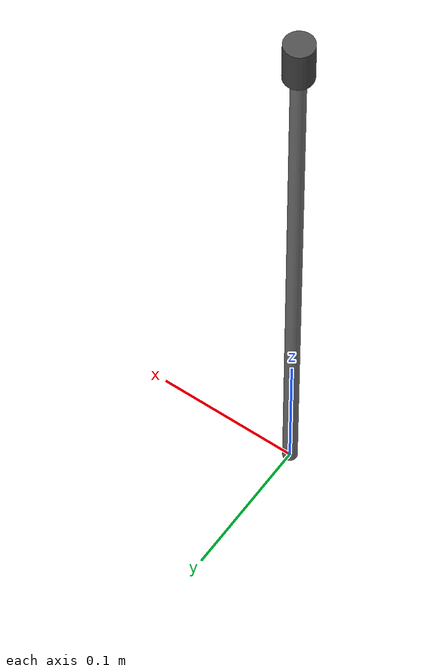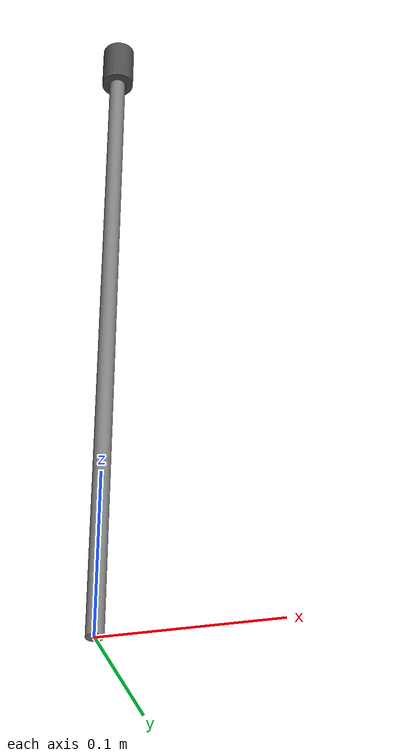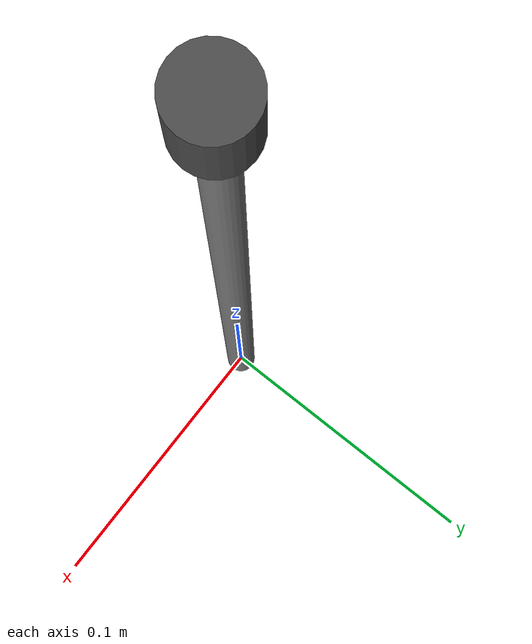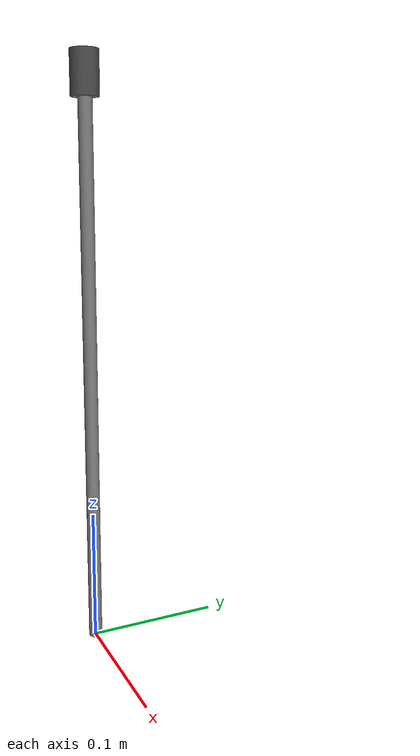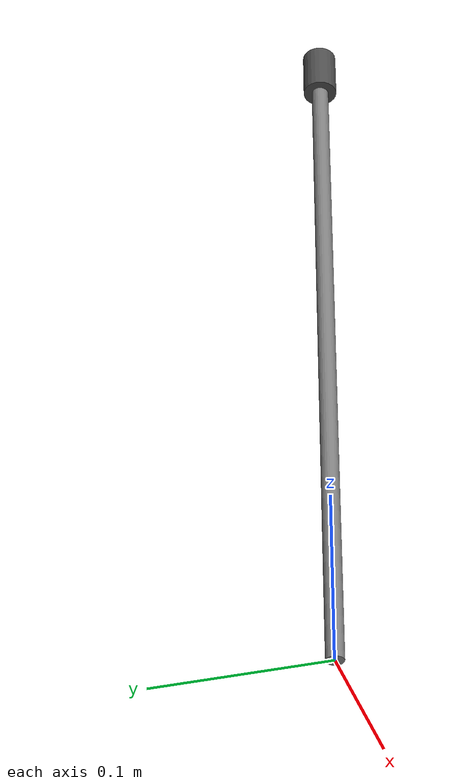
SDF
<?xml version="1.0" ?>
<sdf version="1.7">
  <model name="stick">
    <static>false</static>

    <!-- Main stick shaft -->
    <link name="stick_link">
      <pose>0 0 0 0 0 0</pose>
      <inertial>
        <mass>0.04</mass>
        <inertia>
          <ixx>0.0002</ixx>
          <iyy>0.0002</iyy>
          <izz>0.0000005</izz>
        </inertia>
      </inertial>

      <visual name="main_stick_visual">
        <geometry>
          <cylinder>
            <radius>0.005</radius>
            <length>0.4</length>
          </cylinder>
        </geometry>
        <pose>0 0 0.2 0 0 0</pose>
        <material>
          <ambient>0.5 0.5 0.5 1</ambient>
          <diffuse>0.5 0.5 0.5 1</diffuse>
        </material>
      </visual>

      <collision name="main_stick_collision">
        <geometry>
          <cylinder>
            <radius>0.005</radius>
            <length>0.4</length>
          </cylinder>
        </geometry>
        <pose>0 0 0.2 0 0 0</pose>
      </collision>
    </link>

    <!-- Cap at the tip -->
    <link name="sensor_cap_link">
      <pose>0 0 0.415 0 0 0</pose>
      <inertial>
        <mass>0.01</mass>
        <inertia>
          <ixx>0.00001</ixx>
          <iyy>0.00001</iyy>
          <izz>0.0000001</izz>
        </inertia>
      </inertial>

      <visual name="sensor_cap_visual">
        <geometry>
          <cylinder>
            <radius>0.01</radius>
            <length>0.03</length>
          </cylinder>
        </geometry>
        <pose>0 0 0 0 0 0</pose>
        <material>
          <ambient>0.3 0.3 0.3 1</ambient>
          <diffuse>0.3 0.3 0.3 1</diffuse>
        </material>
      </visual>

      <collision name="sensor_cap_collision">
        <geometry>
          <cylinder>
            <radius>0.01</radius>
            <length>0.03</length>
          </cylinder>
        </geometry>
        <pose>0 0 0 0 0 0</pose>
      </collision>
    </link>

    <!-- Fixed joint between shaft and sensor cap -->
    <joint name="cap_fixed_joint" type="fixed">
      <parent>stick_link</parent>
      <child>sensor_cap_link</child>
      <pose>0 0 0.415 0 0 0</pose>
      <sensor name="force_torque" type="force_torque">
          <update_rate>30</update_rate>
          <frame>child</frame>
          <measure_direction>child_to_parent</measure_direction>
      </sensor>
    </joint>

    <!-- Force-Torque Plugin (moved to model level) -->
    <plugin filename="gz-sim-forcetorque-system"
            name="gz::sim::systems::ForceTorque">
      <always_on>1</always_on>
    </plugin>

  </model>
</sdf>
